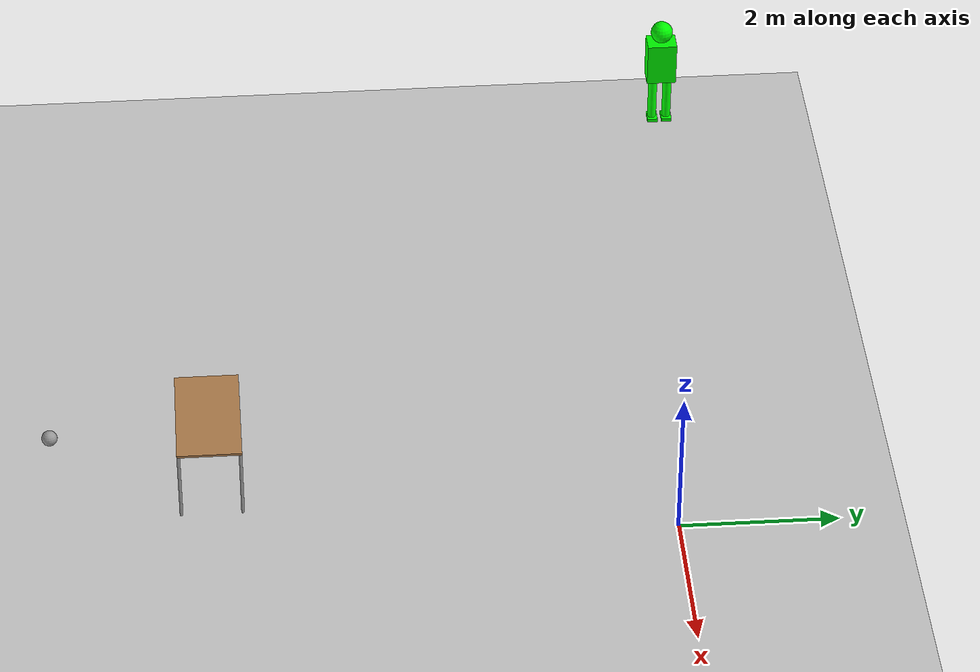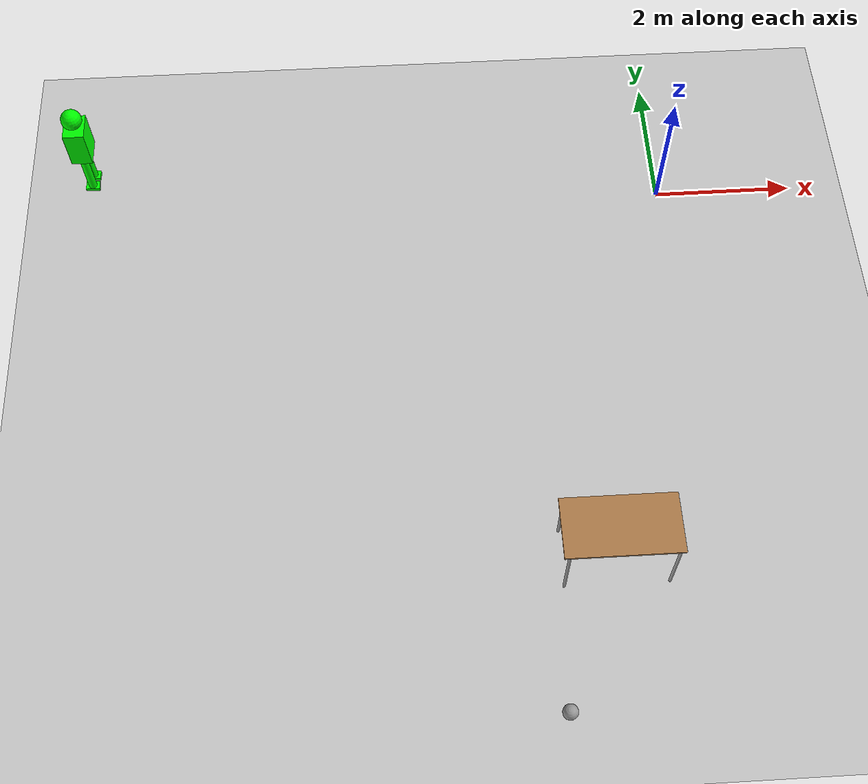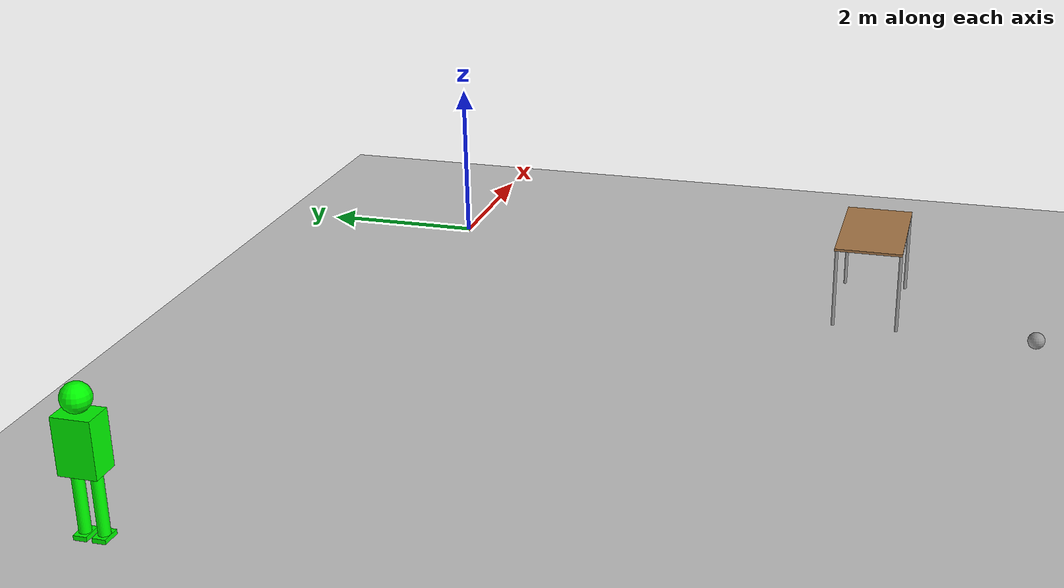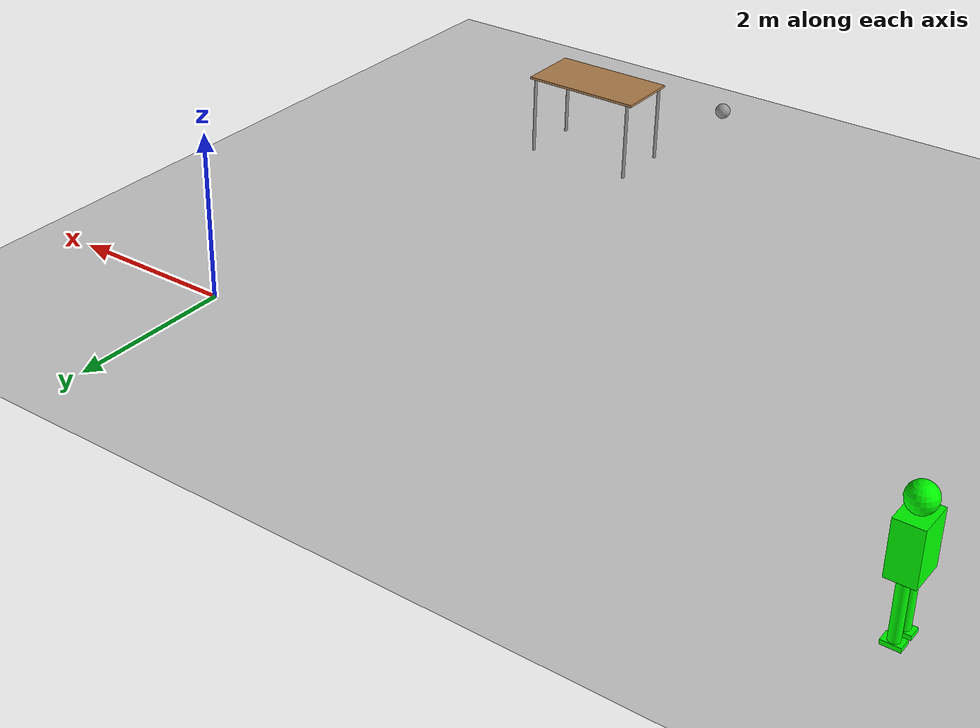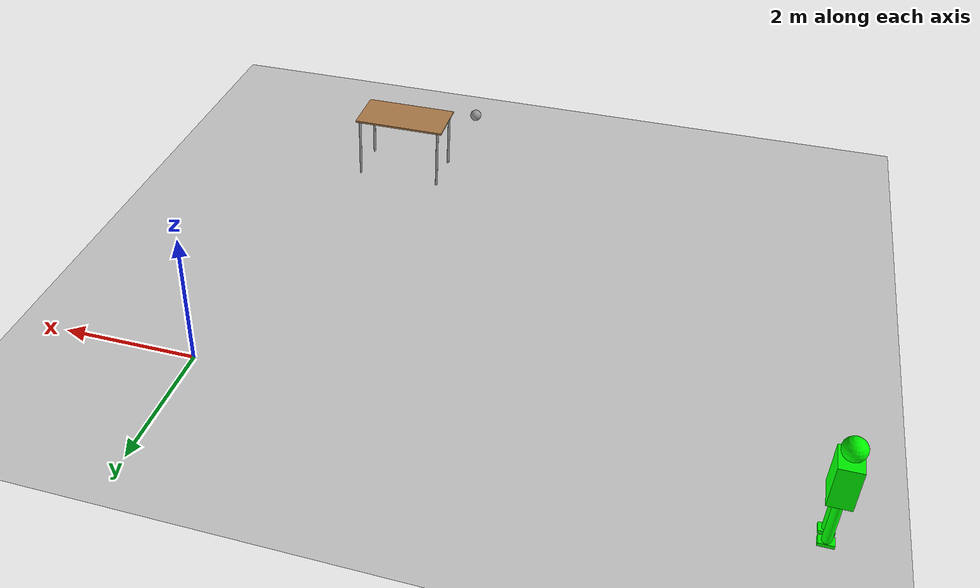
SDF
<sdf version="1.7">
 <world name="default">
  <model name="ground_plane">
   <static>1</static>
   <link name="link">
    <collision name="collision">
     <geometry><plane><normal>0 0 1</normal><size>100 100</size></plane></geometry>
     <surface>
      <contact><collide_bitmask>65535</collide_bitmask></contact>
      <friction><ode><mu>100</mu><mu2>50</mu2></ode></friction>
     </surface>
    </collision>
    <visual name="visual">
     <cast_shadows>0</cast_shadows>
     <geometry><plane><normal>0 0 1</normal><size>100 100</size></plane></geometry>
     <material>
      <script><uri>file://media/materials/scripts/gazebo.material</uri><name>Gazebo/Grey</name></script>
     </material>
    </visual>
   </link>
  </model>
  <model name="HumanoidRobot">
   <link name="link_1">
    <inertial>
     <mass>1</mass>
     <inertia>
      <ixx>0.166667</ixx>
      <ixy>0</ixy>
      <ixz>0</ixz>
      <iyy>0.166667</iyy>
      <iyz>0</iyz>
      <izz>0.166667</izz>
     </inertia>
    </inertial>
    <pose>0 -0.000833 0.458333 0 -0 0</pose>
    <visual name="visual">
     <geometry><box><size>0.3 0.4 0.6</size></box></geometry>
     <material>
      <lighting>1</lighting>
      <script><uri>file://media/materials/scripts/gazebo.material</uri><name>Gazebo/Grey</name></script>
      <shader type="pixel"><normal_map>__default__</normal_map></shader>
      <ambient>0 1 0 1</ambient>
      <diffuse>0.7 0.7 0.7 1</diffuse>
      <specular>0.01 0.01 0.01 1</specular>
      <emissive>0 0 0 1</emissive>
     </material>
    </visual>
    <collision name="collision">
     <geometry><box><size>0.3 0.4 0.6</size></box></geometry>
     <surface>
      <friction>
       <ode><mu>1</mu><mu2>1</mu2><fdir1>0 0 0</fdir1><slip1>0</slip1><slip2>0</slip2></ode>
       <torsional>
        <coefficient>1</coefficient>
        <patch_radius>0</patch_radius>
        <surface_radius>0</surface_radius>
        <use_patch_radius>1</use_patch_radius>
        <ode><slip>0</slip></ode>
       </torsional>
      </friction>
      <bounce><restitution_coefficient>0</restitution_coefficient><threshold>1e+06</threshold></bounce>
      <contact>
       <collide_without_contact>0</collide_without_contact>
       <collide_without_contact_bitmask>1</collide_without_contact_bitmask>
       <collide_bitmask>1</collide_bitmask>
       <ode>
        <soft_cfm>0</soft_cfm>
        <soft_erp>0.2</soft_erp>
        <kp>1e+13</kp>
        <kd>1</kd>
        <max_vel>0.01</max_vel>
        <min_depth>0</min_depth>
       </ode>
       <bullet>
        <split_impulse>1</split_impulse>
        <split_impulse_penetration_threshold>-0.01</split_impulse_penetration_threshold>
        <soft_cfm>0</soft_cfm>
        <soft_erp>0.2</soft_erp>
        <kp>1e+13</kp>
        <kd>1</kd>
       </bullet>
      </contact>
     </surface>
    </collision>
   </link>
   <link name="link_2">
    <inertial>
     <mass>1</mass>
     <inertia><ixx>0.145833</ixx><ixy>0</ixy><ixz>0</ixz><iyy>0.145833</iyy><iyz>0</iyz><izz>0.125</izz></inertia>
    </inertial>
    <pose>0 -0.100833 -0.166667 0 -0 0</pose>
    <visual name="visual">
     <geometry><cylinder><radius>0.06</radius><length>0.65</length></cylinder></geometry>
     <material>
      <lighting>1</lighting>
      <script><uri>file://media/materials/scripts/gazebo.material</uri><name>Gazebo/Grey</name></script>
      <shader type="pixel"><normal_map>__default__</normal_map></shader>
      <ambient>0 1 0 1</ambient>
      <diffuse>0.7 0.7 0.7 1</diffuse>
      <specular>0.01 0.01 0.01 1</specular>
      <emissive>0 0 0 1</emissive>
     </material>
    </visual>
    <collision name="collision">
     <geometry><cylinder><radius>0.06</radius><length>0.65</length></cylinder></geometry>
     <surface>
      <friction>
       <ode><mu>1</mu><mu2>1</mu2><fdir1>0 0 0</fdir1><slip1>0</slip1><slip2>0</slip2></ode>
       <torsional>
        <coefficient>1</coefficient>
        <patch_radius>0</patch_radius>
        <surface_radius>0</surface_radius>
        <use_patch_radius>1</use_patch_radius>
        <ode><slip>0</slip></ode>
       </torsional>
      </friction>
      <bounce><restitution_coefficient>0</restitution_coefficient><threshold>1e+06</threshold></bounce>
      <contact>
       <collide_without_contact>0</collide_without_contact>
       <collide_without_contact_bitmask>1</collide_without_contact_bitmask>
       <collide_bitmask>1</collide_bitmask>
       <ode>
        <soft_cfm>0</soft_cfm>
        <soft_erp>0.2</soft_erp>
        <kp>1e+13</kp>
        <kd>1</kd>
        <max_vel>0.01</max_vel>
        <min_depth>0</min_depth>
       </ode>
       <bullet>
        <split_impulse>1</split_impulse>
        <split_impulse_penetration_threshold>-0.01</split_impulse_penetration_threshold>
        <soft_cfm>0</soft_cfm>
        <soft_erp>0.2</soft_erp>
        <kp>1e+13</kp>
        <kd>1</kd>
       </bullet>
      </contact>
     </surface>
    </collision>
   </link>
   <link name="link_2_clone">
    <inertial>
     <mass>1</mass>
     <inertia><ixx>0.145833</ixx><ixy>0</ixy><ixz>0</ixz><iyy>0.145833</iyy><iyz>0</iyz><izz>0.125</izz></inertia>
    </inertial>
    <pose>0 0.099167 -0.166667 0 -0 0</pose>
    <visual name="visual">
     <geometry><cylinder><radius>0.06</radius><length>0.65</length></cylinder></geometry>
     <material>
      <lighting>1</lighting>
      <script><uri>file://media/materials/scripts/gazebo.material</uri><name>Gazebo/Grey</name></script>
      <shader type="pixel"><normal_map>__default__</normal_map></shader>
      <ambient>0 1 0 1</ambient>
      <diffuse>0.7 0.7 0.7 1</diffuse>
      <specular>0.01 0.01 0.01 1</specular>
      <emissive>0 0 0 1</emissive>
     </material>
    </visual>
    <collision name="collision">
     <geometry><cylinder><radius>0.06</radius><length>0.65</length></cylinder></geometry>
     <surface>
      <friction>
       <ode><mu>1</mu><mu2>1</mu2><fdir1>0 0 0</fdir1><slip1>0</slip1><slip2>0</slip2></ode>
       <torsional>
        <coefficient>1</coefficient>
        <patch_radius>0</patch_radius>
        <surface_radius>0</surface_radius>
        <use_patch_radius>1</use_patch_radius>
        <ode><slip>0</slip></ode>
       </torsional>
      </friction>
      <bounce><restitution_coefficient>0</restitution_coefficient><threshold>1e+06</threshold></bounce>
      <contact>
       <collide_without_contact>0</collide_without_contact>
       <collide_without_contact_bitmask>1</collide_without_contact_bitmask>
       <collide_bitmask>1</collide_bitmask>
       <ode>
        <soft_cfm>0</soft_cfm>
        <soft_erp>0.2</soft_erp>
        <kp>1e+13</kp>
        <kd>1</kd>
        <max_vel>0.01</max_vel>
        <min_depth>0</min_depth>
       </ode>
       <bullet>
        <split_impulse>1</split_impulse>
        <split_impulse_penetration_threshold>-0.01</split_impulse_penetration_threshold>
        <soft_cfm>0</soft_cfm>
        <soft_erp>0.2</soft_erp>
        <kp>1e+13</kp>
        <kd>1</kd>
       </bullet>
      </contact>
     </surface>
    </collision>
   </link>
   <link name="link_3">
    <inertial>
     <mass>1</mass>
     <inertia>
      <ixx>0.166667</ixx>
      <ixy>0</ixy>
      <ixz>0</ixz>
      <iyy>0.166667</iyy>
      <iyz>0</iyz>
      <izz>0.166667</izz>
     </inertia>
    </inertial>
    <pose>0 -0.095833 -0.516667 0 -0 0</pose>
    <visual name="visual">
     <geometry><box><size>0.2 0.14 0.05</size></box></geometry>
     <material>
      <lighting>1</lighting>
      <script><uri>file://media/materials/scripts/gazebo.material</uri><name>Gazebo/Grey</name></script>
      <shader type="pixel"><normal_map>__default__</normal_map></shader>
      <ambient>0 1 0 1</ambient>
      <diffuse>0.7 0.7 0.7 1</diffuse>
      <specular>0.01 0.01 0.01 1</specular>
      <emissive>0 0 0 1</emissive>
     </material>
    </visual>
    <collision name="collision">
     <geometry><box><size>0.2 0.14 0.05</size></box></geometry>
     <surface>
      <friction>
       <ode><mu>1</mu><mu2>1</mu2><fdir1>0 0 0</fdir1><slip1>0</slip1><slip2>0</slip2></ode>
       <torsional>
        <coefficient>1</coefficient>
        <patch_radius>0</patch_radius>
        <surface_radius>0</surface_radius>
        <use_patch_radius>1</use_patch_radius>
        <ode><slip>0</slip></ode>
       </torsional>
      </friction>
      <bounce><restitution_coefficient>0</restitution_coefficient><threshold>1e+06</threshold></bounce>
      <contact>
       <collide_without_contact>0</collide_without_contact>
       <collide_without_contact_bitmask>1</collide_without_contact_bitmask>
       <collide_bitmask>1</collide_bitmask>
       <ode>
        <soft_cfm>0</soft_cfm>
        <soft_erp>0.2</soft_erp>
        <kp>1e+13</kp>
        <kd>1</kd>
        <max_vel>0.01</max_vel>
        <min_depth>0</min_depth>
       </ode>
       <bullet>
        <split_impulse>1</split_impulse>
        <split_impulse_penetration_threshold>-0.01</split_impulse_penetration_threshold>
        <soft_cfm>0</soft_cfm>
        <soft_erp>0.2</soft_erp>
        <kp>1e+13</kp>
        <kd>1</kd>
       </bullet>
      </contact>
     </surface>
    </collision>
   </link>
   <link name="link_3_clone">
    <inertial>
     <mass>1</mass>
     <inertia>
      <ixx>0.166667</ixx>
      <ixy>0</ixy>
      <ixz>0</ixz>
      <iyy>0.166667</iyy>
      <iyz>0</iyz>
      <izz>0.166667</izz>
     </inertia>
    </inertial>
    <pose>0 0.099167 -0.516667 0 -0 0</pose>
    <visual name="visual">
     <geometry><box><size>0.2 0.14 0.05</size></box></geometry>
     <material>
      <lighting>1</lighting>
      <script><uri>file://media/materials/scripts/gazebo.material</uri><name>Gazebo/Grey</name></script>
      <shader type="pixel"><normal_map>__default__</normal_map></shader>
      <ambient>0 1 0 1</ambient>
      <diffuse>0.7 0.7 0.7 1</diffuse>
      <specular>0.01 0.01 0.01 1</specular>
      <emissive>0 0 0 1</emissive>
     </material>
    </visual>
    <collision name="collision">
     <geometry><box><size>0.2 0.14 0.05</size></box></geometry>
     <surface>
      <friction>
       <ode><mu>1</mu><mu2>1</mu2><fdir1>0 0 0</fdir1><slip1>0</slip1><slip2>0</slip2></ode>
       <torsional>
        <coefficient>1</coefficient>
        <patch_radius>0</patch_radius>
        <surface_radius>0</surface_radius>
        <use_patch_radius>1</use_patch_radius>
        <ode><slip>0</slip></ode>
       </torsional>
      </friction>
      <bounce><restitution_coefficient>0</restitution_coefficient><threshold>1e+06</threshold></bounce>
      <contact>
       <collide_without_contact>0</collide_without_contact>
       <collide_without_contact_bitmask>1</collide_without_contact_bitmask>
       <collide_bitmask>1</collide_bitmask>
       <ode>
        <soft_cfm>0</soft_cfm>
        <soft_erp>0.2</soft_erp>
        <kp>1e+13</kp>
        <kd>1</kd>
        <max_vel>0.01</max_vel>
        <min_depth>0</min_depth>
       </ode>
       <bullet>
        <split_impulse>1</split_impulse>
        <split_impulse_penetration_threshold>-0.01</split_impulse_penetration_threshold>
        <soft_cfm>0</soft_cfm>
        <soft_erp>0.2</soft_erp>
        <kp>1e+13</kp>
        <kd>1</kd>
       </bullet>
      </contact>
     </surface>
    </collision>
   </link>
   <link name="link_4">
    <inertial>
     <mass>1</mass>
     <inertia><ixx>0.1</ixx><ixy>0</ixy><ixz>0</ixz><iyy>0.1</iyy><iyz>0</iyz><izz>0.1</izz></inertia>
    </inertial>
    <pose>0 -0.000833 0.908333 0 -0 0</pose>
    <visual name="visual">
     <geometry><sphere><radius>0.15</radius></sphere></geometry>
     <material>
      <lighting>1</lighting>
      <script><uri>file://media/materials/scripts/gazebo.material</uri><name>Gazebo/Grey</name></script>
      <shader type="pixel"><normal_map>__default__</normal_map></shader>
      <ambient>0 1 0 1</ambient>
      <diffuse>0.7 0.7 0.7 1</diffuse>
      <specular>0.01 0.01 0.01 1</specular>
      <emissive>0 0 0 1</emissive>
     </material>
    </visual>
    <collision name="collision">
     <geometry><sphere><radius>0.15</radius></sphere></geometry>
     <surface>
      <friction>
       <ode><mu>1</mu><mu2>1</mu2><fdir1>0 0 0</fdir1><slip1>0</slip1><slip2>0</slip2></ode>
       <torsional>
        <coefficient>1</coefficient>
        <patch_radius>0</patch_radius>
        <surface_radius>0</surface_radius>
        <use_patch_radius>1</use_patch_radius>
        <ode><slip>0</slip></ode>
       </torsional>
      </friction>
      <bounce><restitution_coefficient>0</restitution_coefficient><threshold>1e+06</threshold></bounce>
      <contact>
       <collide_without_contact>0</collide_without_contact>
       <collide_without_contact_bitmask>1</collide_without_contact_bitmask>
       <collide_bitmask>1</collide_bitmask>
       <ode>
        <soft_cfm>0</soft_cfm>
        <soft_erp>0.2</soft_erp>
        <kp>1e+13</kp>
        <kd>1</kd>
        <max_vel>0.01</max_vel>
        <min_depth>0</min_depth>
       </ode>
       <bullet>
        <split_impulse>1</split_impulse>
        <split_impulse_penetration_threshold>-0.01</split_impulse_penetration_threshold>
        <soft_cfm>0</soft_cfm>
        <soft_erp>0.2</soft_erp>
        <kp>1e+13</kp>
        <kd>1</kd>
       </bullet>
      </contact>
     </surface>
    </collision>
   </link>
   <joint name="link_1_JOINT_1" type="fixed">
    <parent>link_1</parent>
    <child>link_2</child>
    <physics>
     <ode><limit><cfm>0</cfm><erp>0.2</erp></limit><suspension><cfm>0</cfm><erp>0.2</erp></suspension></ode>
    </physics>
   </joint>
   <joint name="link_1_JOINT_2" type="fixed">
    <parent>link_1</parent>
    <child>link_2_clone</child>
    <physics>
     <ode><limit><cfm>0</cfm><erp>0.2</erp></limit><suspension><cfm>0</cfm><erp>0.2</erp></suspension></ode>
    </physics>
   </joint>
   <joint name="link_1_JOINT_7" type="fixed">
    <parent>link_1</parent>
    <child>link_4</child>
    <physics>
     <ode><limit><cfm>0</cfm><erp>0.2</erp></limit><suspension><cfm>0</cfm><erp>0.2</erp></suspension></ode>
    </physics>
   </joint>
   <joint name="link_2_JOINT_3" type="fixed">
    <parent>link_2</parent>
    <child>link_3</child>
    <physics>
     <ode><limit><cfm>0</cfm><erp>0.2</erp></limit><suspension><cfm>0</cfm><erp>0.2</erp></suspension></ode>
    </physics>
   </joint>
   <joint name="link_2_clone_JOINT_5" type="fixed">
    <parent>link_2_clone</parent>
    <child>link_3_clone</child>
    <physics>
     <ode><limit><cfm>0</cfm><erp>0.2</erp></limit><suspension><cfm>0</cfm><erp>0.2</erp></suspension></ode>
    </physics>
   </joint>
   <static>0</static>
   <pose>-8.48125 0.717241 0.541667 -1e-06 -1e-06 -0.001272</pose>
  </model>
  <model name="my_ball">
   <link name="link_0">
    <inertial>
     <mass>1</mass>
     <inertia><ixx>0.1</ixx><ixy>0</ixy><ixz>0</ixz><iyy>0.1</iyy><iyz>0</iyz><izz>0.1</izz></inertia>
    </inertial>
    <visual name="visual">
     <geometry><sphere><radius>0.1</radius></sphere></geometry>
     <material>
      <lighting>1</lighting>
      <script><uri>file://media/materials/scripts/gazebo.material</uri><name>Gazebo/Grey</name></script>
      <shader type="pixel"><normal_map>__default__</normal_map></shader>
      <ambient>1 1 1 1</ambient>
      <diffuse>1 1 1 1</diffuse>
      <specular>1 1 1 1</specular>
      <emissive>1 1 1 1</emissive>
     </material>
    </visual>
    <collision name="collision">
     <geometry><sphere><radius>0.1</radius></sphere></geometry>
     <surface>
      <friction>
       <ode><mu>1</mu><mu2>1</mu2><fdir1>0 0 0</fdir1><slip1>0</slip1><slip2>0</slip2></ode>
       <torsional>
        <coefficient>1</coefficient>
        <patch_radius>0</patch_radius>
        <surface_radius>0</surface_radius>
        <use_patch_radius>1</use_patch_radius>
        <ode><slip>0</slip></ode>
       </torsional>
      </friction>
      <bounce><restitution_coefficient>0</restitution_coefficient><threshold>1e+06</threshold></bounce>
      <contact>
       <collide_without_contact>0</collide_without_contact>
       <collide_without_contact_bitmask>1</collide_without_contact_bitmask>
       <collide_bitmask>1</collide_bitmask>
       <ode>
        <soft_cfm>0</soft_cfm>
        <soft_erp>0.2</soft_erp>
        <kp>1e+13</kp>
        <kd>1</kd>
        <max_vel>0.01</max_vel>
        <min_depth>0</min_depth>
       </ode>
       <bullet>
        <split_impulse>1</split_impulse>
        <split_impulse_penetration_threshold>-0.01</split_impulse_penetration_threshold>
        <soft_cfm>0</soft_cfm>
        <soft_erp>0.2</soft_erp>
        <kp>1e+13</kp>
        <kd>1</kd>
       </bullet>
      </contact>
     </surface>
    </collision>
   </link>
   <static>0</static>
   <pose>-2.10198 -7.72901 0.1 0 -0 0</pose>
  </model>
  <model name="table_0">
   <static>1</static>
   <link name="link">
    <collision name="surface">
     <pose>0 0 1 0 -0 0</pose>
     <geometry><box><size>1.5 0.8 0.03</size></box></geometry>
     <surface><friction><ode><mu>0.6</mu><mu2>0.6</mu2></ode></friction></surface>
    </collision>
    <visual name="visual1">
     <pose>0 0 1 0 -0 0</pose>
     <geometry><box><size>1.5 0.8 0.03</size></box></geometry>
     <material>
      <script><uri>file://media/materials/scripts/gazebo.material</uri><name>Gazebo/Wood</name></script>
     </material>
    </visual>
    <collision name="front_left_leg">
     <pose>0.68 0.38 0.5 0 -0 0</pose>
     <geometry><cylinder><radius>0.02</radius><length>1</length></cylinder></geometry>
    </collision>
    <visual name="front_left_leg">
     <pose>0.68 0.38 0.5 0 -0 0</pose>
     <geometry><cylinder><radius>0.02</radius><length>1</length></cylinder></geometry>
     <material>
      <script><uri>file://media/materials/scripts/gazebo.material</uri><name>Gazebo/Grey</name></script>
     </material>
    </visual>
    <collision name="front_right_leg">
     <pose>0.68 -0.38 0.5 0 -0 0</pose>
     <geometry><cylinder><radius>0.02</radius><length>1</length></cylinder></geometry>
    </collision>
    <visual name="front_right_leg">
     <pose>0.68 -0.38 0.5 0 -0 0</pose>
     <geometry><cylinder><radius>0.02</radius><length>1</length></cylinder></geometry>
     <material>
      <script><uri>file://media/materials/scripts/gazebo.material</uri><name>Gazebo/Grey</name></script>
     </material>
    </visual>
    <collision name="back_right_leg">
     <pose>-0.68 -0.38 0.5 0 -0 0</pose>
     <geometry><cylinder><radius>0.02</radius><length>1</length></cylinder></geometry>
    </collision>
    <visual name="back_right_leg">
     <pose>-0.68 -0.38 0.5 0 -0 0</pose>
     <geometry><cylinder><radius>0.02</radius><length>1</length></cylinder></geometry>
     <material>
      <script><uri>file://media/materials/scripts/gazebo.material</uri><name>Gazebo/Grey</name></script>
     </material>
    </visual>
    <collision name="back_left_leg">
     <pose>-0.68 0.38 0.5 0 -0 0</pose>
     <geometry><cylinder><radius>0.02</radius><length>1</length></cylinder></geometry>
    </collision>
    <visual name="back_left_leg">
     <pose>-0.68 0.38 0.5 0 -0 0</pose>
     <geometry><cylinder><radius>0.02</radius><length>1</length></cylinder></geometry>
     <material>
      <script><uri>file://media/materials/scripts/gazebo.material</uri><name>Gazebo/Grey</name></script>
     </material>
    </visual>
   </link>
   <pose>-1.33024 -5.72076 0 0 -0 0</pose>
  </model>
 </world>
</sdf>
